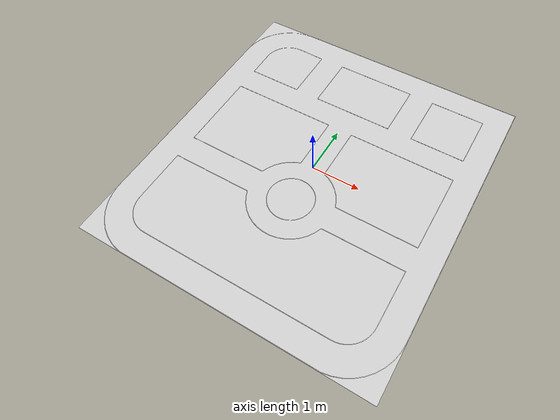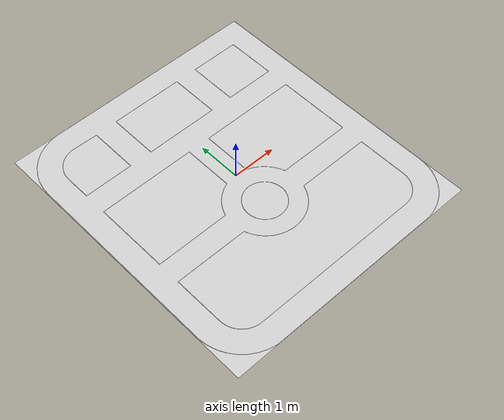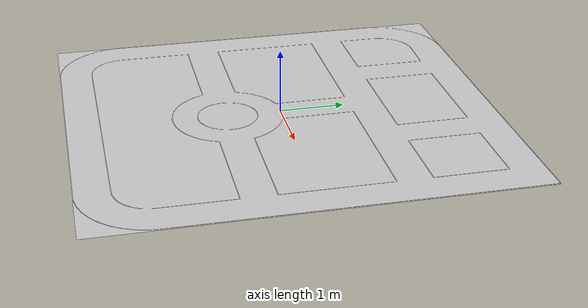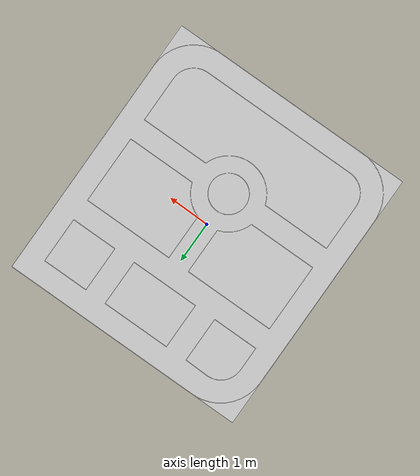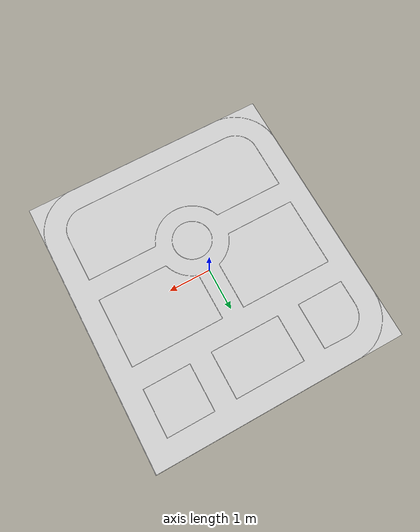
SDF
<?xml version="1.0" ?>
<sdf version="1.8">
  <world name="cyber_city">
    <physics name="1ms" type="ignored">
      <max_step_size>0.001</max_step_size>
      <real_time_factor>1.0</real_time_factor>
    </physics>
    <plugin filename="gz-sim-user-commands-system" name="gz::sim::systems::UserCommands"/>
    <plugin filename="gz-sim-physics-system" name="gz::sim::systems::Physics"/>
    <plugin filename="gz-sim-scene-broadcaster-system" name="gz::sim::systems::SceneBroadcaster"/>
    <plugin filename="gz-sim-sensors-system" name="gz::sim::systems::Sensors"/>

    <light type="directional" name="sun">
      <cast_shadows>true</cast_shadows>
      <pose>0 0 10 0 0 0</pose>
      <diffuse>1 1 1 1</diffuse>
      <specular>0.5 0.5 0.5 1</specular>
      <direction>-0.5 0.1 -0.9</direction>
    </light>
    <model name="cyber_city_ground">
      <static>true</static>
      <link name="link">
        <collision name="collision">
          <geometry>
            <plane>
              <normal>0 0 1</normal>
              <size>6 6.54079696</size>
            </plane>
          </geometry>
        </collision>
        <visual name="visual">
          <geometry>
            <plane>
              <normal>0 0 1</normal>
              <size>6 6.54079696</size>
            </plane>
          </geometry>
          <material>
            <ambient>0.8 0.8 0.8 1</ambient>
            <diffuse>0.8 0.8 0.8 1</diffuse>
            <pbr>
              <metal>
                <albedo_map>materials/textures/cyber_city_map.png</albedo_map>
                <roughness>0.8</roughness> <metalness>0.0</metalness>
              </metal>
            </pbr>
          </material>
        </visual>
      </link>
    </model>

    <model name="cyber_city_lanes">
      <static>true</static>
      <pose>0 0 0.001 0 0 0</pose>
      <link name="lane_link">
        <visual name="lane_visual">
          <geometry>
            <mesh>
              <uri>materials/meshes/cyber_city_lines.dae</uri>
            </mesh>
          </geometry>
          <material>
            <ambient>1 1 1 1</ambient>
            <diffuse>1 1 1 1</diffuse>
            <emissive>0.8 0.8 0.8 1</emissive>
          </material>
        </visual>
        </link>
    </model>
  </world>
</sdf>
